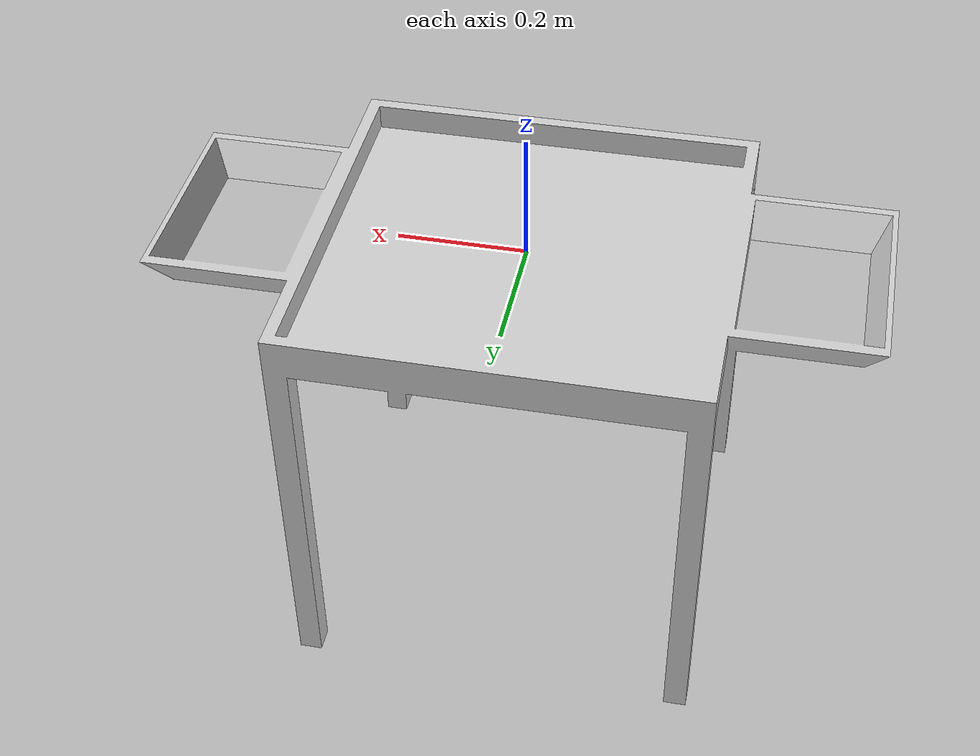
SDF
<?xml version="1.0"?>
<sdf version='1.7'>
  <model name='competition_cleanup'>
    <static>true</static>
    <link name='base_link'>
      <pose>0 0 0 0 -0 0</pose>
      <inertial>
        <pose>-0.000000 0.000819 -0.079716 0 0 0</pose>
        <mass>1</mass>
        <inertia>
          <ixx>0.001055</ixx>
          <ixy>0.000000</ixy>
          <ixz>0.000000</ixz>
          <iyy>0.001449</iyy>
          <iyz>-0.000001</iyz>
          <izz>0.001770</izz>
        </inertia>
      </inertial>
      <collision name='base_link_collision'>
        <pose>0 0 0 0 -0 0</pose>
        <geometry>
          <mesh>
             <uri>model://competition_cleanup/meshes/cleanuptable.dae</uri>
          </mesh>
        </geometry>
      </collision>
      <visual name='base_link_visual'>
        <pose>0 0 0 0 -0 0</pose>
        <geometry>
          <mesh>
             <uri>model://competition_cleanup/meshes/cleanuptable.dae</uri>
          </mesh>
        </geometry>
      </visual>
    </link>
  </model>
</sdf>
